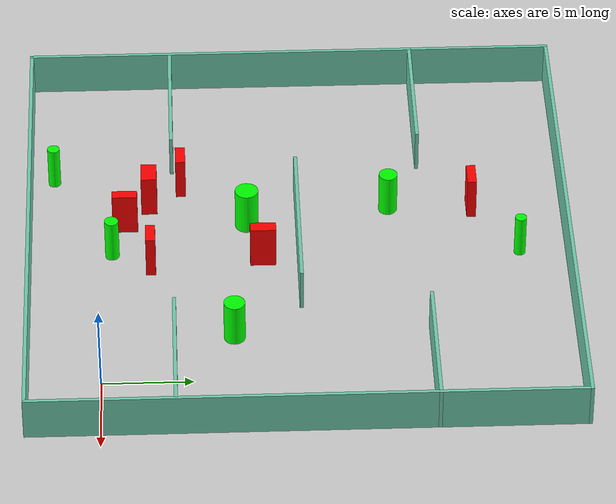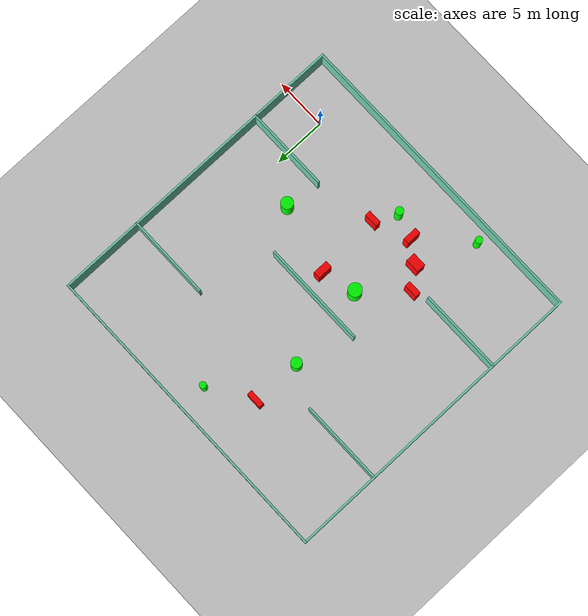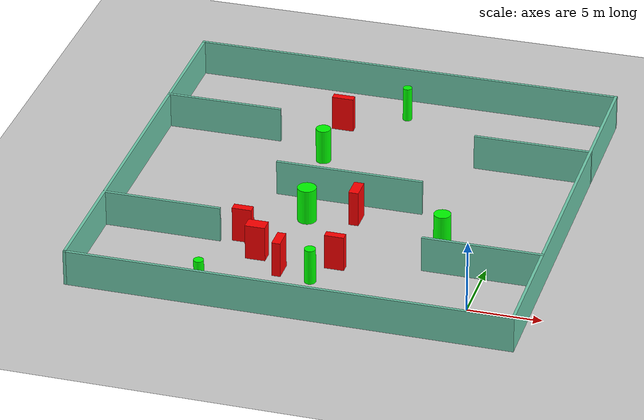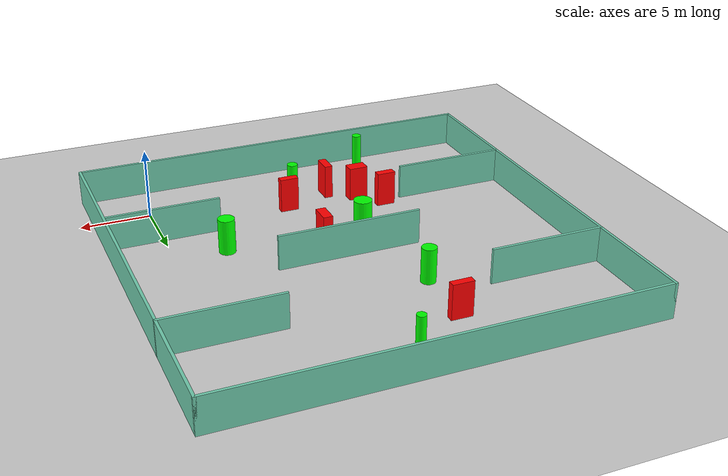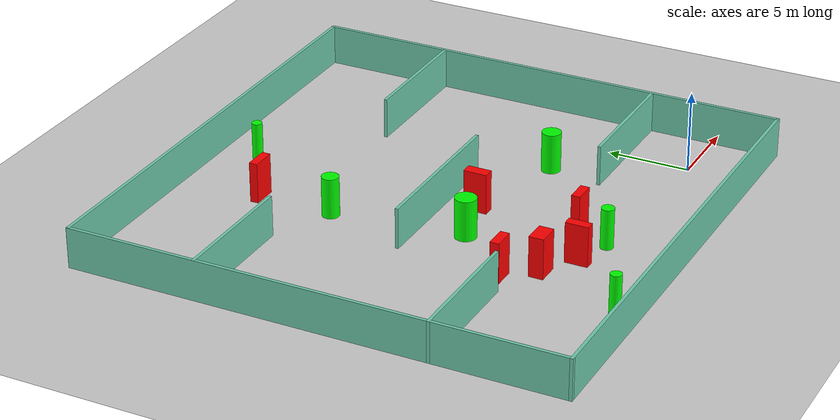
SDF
<sdf version="1.7">
 <world name="default">
  <light name="sun" type="directional">
   <pose>0 0 10 0 -0 0</pose>
   <diffuse>0.8 0.8 0.8 1</diffuse>
   <specular>0.2 0.2 0.2 1</specular>
   <attenuation>
    <range>1000</range>
    <constant>0.9</constant>
    <linear>0.01</linear>
    <quadratic>0.001</quadratic>
   </attenuation>
   <direction>-0.5 0.1 -0.9</direction>
   <spot><inner_angle>0</inner_angle><outer_angle>0</outer_angle><falloff>0</falloff></spot>
  </light>
  <model name="ground_plane">
   <static>1</static>
   <link name="link">
    <collision name="collision">
     <geometry><plane><normal>0 0 1</normal><size>100 100</size></plane></geometry>
     <surface>
      <contact><collide_bitmask>65535</collide_bitmask></contact>
      <friction><ode><mu>100</mu><mu2>50</mu2></ode></friction>
     </surface>
    </collision>
    <visual name="visual">
     <cast_shadows>0</cast_shadows>
     <geometry><plane><normal>0 0 1</normal><size>100 100</size></plane></geometry>
     <material>
      <script><uri>file://media/materials/scripts/gazebo.material</uri><name>Gazebo/Grey</name></script>
     </material>
    </visual>
   </link>
  </model>
  <gravity>0 0 -9.8</gravity>
  <magnetic_field>6e-06 2.3e-05 -4.2e-05</magnetic_field>
  <atmosphere type="adiabatic"/>
  <physics type="ode">
   <max_step_size>0.001</max_step_size>
   <real_time_factor>1</real_time_factor>
   <real_time_update_rate>1000</real_time_update_rate>
  </physics>
  <scene><ambient>0.4 0.4 0.4 1</ambient><background>0.7 0.7 0.7 1</background><shadows>1</shadows></scene>
  <spherical_coordinates>
   <surface_model>EARTH_WGS84</surface_model>
   <latitude_deg>0</latitude_deg>
   <longitude_deg>0</longitude_deg>
   <elevation>0</elevation>
   <heading_deg>0</heading_deg>
  </spherical_coordinates>
  <model name="my_base_walls">
   <link name="Wall_10">
    <collision name="Wall_10_Collision">
     <geometry><box><size>8.2 0.2 2.5</size></box></geometry>
     <pose>0 0 1.25 0 -0 0</pose>
    </collision>
    <visual name="Wall_10_Visual">
     <pose>0 0 1.25 0 -0 0</pose>
     <geometry><box><size>8.2 0.2 2.5</size></box></geometry>
     <material>
      <script><uri>file://media/materials/scripts/gazebo.material</uri><name>Gazebo/Grey</name></script>
      <ambient>0.435294 0.796078 0.67451 1</ambient>
     </material>
     <meta><layer>0</layer></meta>
    </visual>
    <pose>-11 -7 0 0 -0 0</pose>
   </link>
   <link name="Wall_12">
    <collision name="Wall_12_Collision">
     <geometry><box><size>8.2 0.2 2.5</size></box></geometry>
     <pose>0 0 1.25 0 -0 0</pose>
    </collision>
    <visual name="Wall_12_Visual">
     <pose>0 0 1.25 0 -0 0</pose>
     <geometry><box><size>8.2 0.2 2.5</size></box></geometry>
     <material>
      <script><uri>file://media/materials/scripts/gazebo.material</uri><name>Gazebo/Grey</name></script>
      <ambient>0.435294 0.796078 0.67451 1</ambient>
     </material>
     <meta><layer>0</layer></meta>
    </visual>
    <pose>-11 7 0 0 -0 0</pose>
   </link>
   <link name="Wall_14">
    <collision name="Wall_14_Collision">
     <geometry><box><size>8.2 0.2 2.5</size></box></geometry>
     <pose>0 0 1.25 0 -0 0</pose>
    </collision>
    <visual name="Wall_14_Visual">
     <pose>0 0 1.25 0 -0 0</pose>
     <geometry><box><size>8.2 0.2 2.5</size></box></geometry>
     <material>
      <script><uri>file://media/materials/scripts/gazebo.material</uri><name>Gazebo/Grey</name></script>
      <ambient>0.435294 0.796078 0.67451 1</ambient>
     </material>
     <meta><layer>0</layer></meta>
    </visual>
    <pose>11 7 0 0 -0 3.14159</pose>
   </link>
   <link name="Wall_16">
    <collision name="Wall_16_Collision">
     <geometry><box><size>10.2 0.2 2.5</size></box></geometry>
     <pose>0 0 1.25 0 -0 0</pose>
    </collision>
    <visual name="Wall_16_Visual">
     <pose>0 0 1.25 0 -0 0</pose>
     <geometry><box><size>10.2 0.2 2.5</size></box></geometry>
     <material>
      <script><uri>file://media/materials/scripts/gazebo.material</uri><name>Gazebo/Grey</name></script>
      <ambient>0.435294 0.796078 0.67451 1</ambient>
     </material>
     <meta><layer>0</layer></meta>
    </visual>
    <pose>0 0 0 0 -0 3.14159</pose>
   </link>
   <link name="Wall_2">
    <collision name="Wall_2_Collision">
     <geometry><box><size>30.2 0.2 2.5</size></box></geometry>
     <pose>0 0 1.25 0 -0 0</pose>
    </collision>
    <visual name="Wall_2_Visual">
     <pose>0 0 1.25 0 -0 0</pose>
     <geometry><box><size>30.2 0.2 2.5</size></box></geometry>
     <material>
      <script><uri>file://media/materials/scripts/gazebo.material</uri><name>Gazebo/Grey</name></script>
      <ambient>0.435294 0.796078 0.67451 1</ambient>
     </material>
     <meta><layer>0</layer></meta>
    </visual>
    <pose>0 -15 0 0 -0 3.14159</pose>
   </link>
   <link name="Wall_3">
    <collision name="Wall_3_Collision">
     <geometry><box><size>30.2 0.2 2.5</size></box></geometry>
     <pose>0 0 1.25 0 -0 0</pose>
    </collision>
    <visual name="Wall_3_Visual">
     <pose>0 0 1.25 0 -0 0</pose>
     <geometry><box><size>30.2 0.2 2.5</size></box></geometry>
     <material>
      <script><uri>file://media/materials/scripts/gazebo.material</uri><name>Gazebo/Grey</name></script>
      <ambient>0.435294 0.796078 0.67451 1</ambient>
     </material>
     <meta><layer>0</layer></meta>
    </visual>
    <pose>-15 0 0 0 -0 1.5708</pose>
   </link>
   <link name="Wall_4">
    <collision name="Wall_4_Collision">
     <geometry><box><size>30.2 0.2 2.5</size></box></geometry>
     <pose>0 0 1.25 0 -0 0</pose>
    </collision>
    <visual name="Wall_4_Visual">
     <pose>0 0 1.25 0 -0 0</pose>
     <geometry><box><size>30.2 0.2 2.5</size></box></geometry>
     <material>
      <script><uri>file://media/materials/scripts/gazebo.material</uri><name>Gazebo/Grey</name></script>
      <ambient>0.435294 0.796078 0.67451 1</ambient>
     </material>
     <meta><layer>0</layer></meta>
    </visual>
    <pose>0 15 0 0 -0 0</pose>
   </link>
   <link name="Wall_6">
    <collision name="Wall_6_Collision">
     <geometry><box><size>30.2 0.2 2.5</size></box></geometry>
     <pose>0 0 1.25 0 -0 0</pose>
    </collision>
    <visual name="Wall_6_Visual">
     <pose>0 0 1.25 0 -0 0</pose>
     <geometry><box><size>30.2 0.2 2.5</size></box></geometry>
     <material>
      <script><uri>file://media/materials/scripts/gazebo.material</uri><name>Gazebo/Grey</name></script>
      <ambient>0.435294 0.796078 0.67451 1</ambient>
     </material>
     <meta><layer>0</layer></meta>
    </visual>
    <pose>15 0 0 0 -0 1.5708</pose>
   </link>
   <link name="Wall_8">
    <collision name="Wall_8_Collision">
     <geometry><box><size>8.2 0.2 2.5</size></box></geometry>
     <pose>0 0 1.25 0 -0 0</pose>
    </collision>
    <visual name="Wall_8_Visual">
     <pose>0 0 1.25 0 -0 0</pose>
     <geometry><box><size>8.2 0.2 2.5</size></box></geometry>
     <material>
      <script><uri>file://media/materials/scripts/gazebo.material</uri><name>Gazebo/Grey</name></script>
      <ambient>0.435294 0.796078 0.67451 1</ambient>
     </material>
     <meta><layer>0</layer></meta>
    </visual>
    <pose>11 -7 0 0 -0 3.14159</pose>
   </link>
   <static>1</static>
   <pose>-11 11 0 0 -0 0</pose>
  </model>
  <model name="cylinder1">
   <static>1</static>
   <link name="link">
    <inertial>
     <mass>1</mass>
     <inertia><ixx>0.5</ixx><ixy>0</ixy><ixz>0</ixz><iyy>0.5</iyy><iyz>0</iyz><izz>1</izz></inertia>
    </inertial>
    <collision name="collision">
     <geometry><cylinder><radius>0.5844972894425321</radius><length>2.5</length></cylinder></geometry>
    </collision>
    <visual name="visual">
     <geometry><cylinder><radius>0.5844972894425321</radius><length>2.5</length></cylinder></geometry>
     <material>
      <ambient>0 1 0 1</ambient>
      <diffuse>0 1 0 1</diffuse>
      <specular>0.1 0.1 0.1 1</specular>
      <emissive>0 0 0 0</emissive>
     </material>
    </visual>
   </link>
   <pose>-3.5557188867851934 7.266997186048444 1.25 0 0 0</pose>
  </model>
  <model name="cylinder2">
   <static>1</static>
   <link name="link">
    <inertial>
     <mass>1</mass>
     <inertia><ixx>0.5</ixx><ixy>0</ixy><ixz>0</ixz><iyy>0.5</iyy><iyz>0</iyz><izz>1</izz></inertia>
    </inertial>
    <collision name="collision">
     <geometry><cylinder><radius>0.3892682920611508</radius><length>2.5</length></cylinder></geometry>
    </collision>
    <visual name="visual">
     <geometry><cylinder><radius>0.3892682920611508</radius><length>2.5</length></cylinder></geometry>
     <material>
      <ambient>0 1 0 1</ambient>
      <diffuse>0 1 0 1</diffuse>
      <specular>0.1 0.1 0.1 1</specular>
      <emissive>0 0 0 0</emissive>
     </material>
    </visual>
   </link>
   <pose>-10.727621779987745 0.6122652139326004 1.25 0 0 0</pose>
  </model>
  <model name="cylinder3">
   <static>1</static>
   <link name="link">
    <inertial>
     <mass>1</mass>
     <inertia><ixx>0.5</ixx><ixy>0</ixy><ixz>0</ixz><iyy>0.5</iyy><iyz>0</iyz><izz>1</izz></inertia>
    </inertial>
    <collision name="collision">
     <geometry><cylinder><radius>0.5195556569612056</radius><length>2.5</length></cylinder></geometry>
    </collision>
    <visual name="visual">
     <geometry><cylinder><radius>0.5195556569612056</radius><length>2.5</length></cylinder></geometry>
     <material>
      <ambient>0 1 0 1</ambient>
      <diffuse>0 1 0 1</diffuse>
      <specular>0.1 0.1 0.1 1</specular>
      <emissive>0 0 0 0</emissive>
     </material>
    </visual>
   </link>
   <pose>-14.313179382479326 16.168249006499522 1.25 0 0 0</pose>
  </model>
  <model name="cylinder4">
   <static>1</static>
   <link name="link">
    <inertial>
     <mass>1</mass>
     <inertia><ixx>0.5</ixx><ixy>0</ixy><ixz>0</ixz><iyy>0.5</iyy><iyz>0</iyz><izz>1</izz></inertia>
    </inertial>
    <collision name="collision">
     <geometry><cylinder><radius>0.3188008344983498</radius><length>2.5</length></cylinder></geometry>
    </collision>
    <visual name="visual">
     <geometry><cylinder><radius>0.3188008344983498</radius><length>2.5</length></cylinder></geometry>
     <material>
      <ambient>0 1 0 1</ambient>
      <diffuse>0 1 0 1</diffuse>
      <specular>0.1 0.1 0.1 1</specular>
      <emissive>0 0 0 0</emissive>
     </material>
    </visual>
   </link>
   <pose>-10.264150042951202 23.336684500326555 1.25 0 0 0</pose>
  </model>
  <model name="cylinder5">
   <static>1</static>
   <link name="link">
    <inertial>
     <mass>1</mass>
     <inertia><ixx>0.5</ixx><ixy>0</ixy><ixz>0</ixz><iyy>0.5</iyy><iyz>0</iyz><izz>1</izz></inertia>
    </inertial>
    <collision name="collision">
     <geometry><cylinder><radius>0.34251044711378914</radius><length>2.5</length></cylinder></geometry>
    </collision>
    <visual name="visual">
     <geometry><cylinder><radius>0.34251044711378914</radius><length>2.5</length></cylinder></geometry>
     <material>
      <ambient>0 1 0 1</ambient>
      <diffuse>0 1 0 1</diffuse>
      <specular>0.1 0.1 0.1 1</specular>
      <emissive>0 0 0 0</emissive>
     </material>
    </visual>
   </link>
   <pose>-17.28289407536997 -2.661804554710668 1.25 0 0 0</pose>
  </model>
  <model name="cylinder6">
   <static>1</static>
   <link name="link">
    <inertial>
     <mass>1</mass>
     <inertia><ixx>0.5</ixx><ixy>0</ixy><ixz>0</ixz><iyy>0.5</iyy><iyz>0</iyz><izz>1</izz></inertia>
    </inertial>
    <collision name="collision">
     <geometry><cylinder><radius>0.6529252792779326</radius><length>2.5</length></cylinder></geometry>
    </collision>
    <visual name="visual">
     <geometry><cylinder><radius>0.6529252792779326</radius><length>2.5</length></cylinder></geometry>
     <material>
      <ambient>0 1 0 1</ambient>
      <diffuse>0 1 0 1</diffuse>
      <specular>0.1 0.1 0.1 1</specular>
      <emissive>0 0 0 0</emissive>
     </material>
    </visual>
   </link>
   <pose>-13.146990214933943 8.174480538244786 1.25 0 0 0</pose>
  </model>
  <model name="box1">
   <static>1</static>
   <link name="link">
    <inertial>
     <mass>1</mass>
     <inertia><ixx>0.083</ixx><ixy>0</ixy><ixz>0</ixz><iyy>0.083</iyy><iyz>0</iyz><izz>0.083</izz></inertia>
    </inertial>
    <collision name="collision">
     <geometry><box><size>0.6789368367247359 1.437962304326711 2.5</size></box></geometry>
    </collision>
    <visual name="visual">
     <geometry><box><size>0.6789368367247359 1.437962304326711 2.5</size></box></geometry>
     <material>
      <ambient>1 0 0 1</ambient>
      <diffuse>1 0 0 1</diffuse>
      <specular>0.1 0.1 0.1 1</specular>
      <emissive>0 0 0 0</emissive>
     </material>
    </visual>
    <sensor name="my_contact" type="contact">
     <contact><collision>box_collision</collision><topic>__default_topic__</topic></contact>
    </sensor>
   </link>
   <pose>-9.951836923523924 9.00353290491626 1.25 0 0 0</pose>
  </model>
  <model name="box2">
   <static>1</static>
   <link name="link">
    <inertial>
     <mass>1</mass>
     <inertia><ixx>0.083</ixx><ixy>0</ixy><ixz>0</ixz><iyy>0.083</iyy><iyz>0</iyz><izz>0.083</izz></inertia>
    </inertial>
    <collision name="collision">
     <geometry><box><size>1.329154512906839 0.5337887876046158 2.5</size></box></geometry>
    </collision>
    <visual name="visual">
     <geometry><box><size>1.329154512906839 0.5337887876046158 2.5</size></box></geometry>
     <material>
      <ambient>1 0 0 1</ambient>
      <diffuse>1 0 0 1</diffuse>
      <specular>0.1 0.1 0.1 1</specular>
      <emissive>0 0 0 0</emissive>
     </material>
    </visual>
    <sensor name="my_contact" type="contact">
     <contact><collision>box_collision</collision><topic>__default_topic__</topic></contact>
    </sensor>
   </link>
   <pose>-9.636656177978383 2.756342366542321 1.25 0 0 0</pose>
  </model>
  <model name="box3">
   <static>1</static>
   <link name="link">
    <inertial>
     <mass>1</mass>
     <inertia><ixx>0.083</ixx><ixy>0</ixy><ixz>0</ixz><iyy>0.083</iyy><iyz>0</iyz><izz>0.083</izz></inertia>
    </inertial>
    <collision name="collision">
     <geometry><box><size>1.3458181879476694 0.5584793725186745 2.5</size></box></geometry>
    </collision>
    <visual name="visual">
     <geometry><box><size>1.3458181879476694 0.5584793725186745 2.5</size></box></geometry>
     <material>
      <ambient>1 0 0 1</ambient>
      <diffuse>1 0 0 1</diffuse>
      <specular>0.1 0.1 0.1 1</specular>
      <emissive>0 0 0 0</emissive>
     </material>
    </visual>
    <sensor name="my_contact" type="contact">
     <contact><collision>box_collision</collision><topic>__default_topic__</topic></contact>
    </sensor>
   </link>
   <pose>-16.493076604572465 4.4997344712474545 1.25 0 0 0</pose>
  </model>
  <model name="box4">
   <static>1</static>
   <link name="link">
    <inertial>
     <mass>1</mass>
     <inertia><ixx>0.083</ixx><ixy>0</ixy><ixz>0</ixz><iyy>0.083</iyy><iyz>0</iyz><izz>0.083</izz></inertia>
    </inertial>
    <collision name="collision">
     <geometry><box><size>1.3686794535220628 0.8868279854977962 2.5</size></box></geometry>
    </collision>
    <visual name="visual">
     <geometry><box><size>1.3686794535220628 0.8868279854977962 2.5</size></box></geometry>
     <material>
      <ambient>1 0 0 1</ambient>
      <diffuse>1 0 0 1</diffuse>
      <specular>0.1 0.1 0.1 1</specular>
      <emissive>0 0 0 0</emissive>
     </material>
    </visual>
    <sensor name="my_contact" type="contact">
     <contact><collision>box_collision</collision><topic>__default_topic__</topic></contact>
    </sensor>
   </link>
   <pose>-14.993296672876891 2.707415257846357 1.25 0 0 0</pose>
  </model>
  <model name="box5">
   <static>1</static>
   <link name="link">
    <inertial>
     <mass>1</mass>
     <inertia><ixx>0.083</ixx><ixy>0</ixy><ixz>0</ixz><iyy>0.083</iyy><iyz>0</iyz><izz>0.083</izz></inertia>
    </inertial>
    <collision name="collision">
     <geometry><box><size>1.5129271974986565 0.5100928520659392 2.5</size></box></geometry>
    </collision>
    <visual name="visual">
     <geometry><box><size>1.5129271974986565 0.5100928520659392 2.5</size></box></geometry>
     <material>
      <ambient>1 0 0 1</ambient>
      <diffuse>1 0 0 1</diffuse>
      <specular>0.1 0.1 0.1 1</specular>
      <emissive>0 0 0 0</emissive>
     </material>
    </visual>
    <sensor name="my_contact" type="contact">
     <contact><collision>box_collision</collision><topic>__default_topic__</topic></contact>
    </sensor>
   </link>
   <pose>-14.199049773046918 20.848751806966515 1.25 0 0 0</pose>
  </model>
  <model name="box6">
   <static>1</static>
   <link name="link">
    <inertial>
     <mass>1</mass>
     <inertia><ixx>0.083</ixx><ixy>0</ixy><ixz>0</ixz><iyy>0.083</iyy><iyz>0</iyz><izz>0.083</izz></inertia>
    </inertial>
    <collision name="collision">
     <geometry><box><size>0.577540535526647 1.4086673132302543 2.5</size></box></geometry>
    </collision>
    <visual name="visual">
     <geometry><box><size>0.577540535526647 1.4086673132302543 2.5</size></box></geometry>
     <material>
      <ambient>1 0 0 1</ambient>
      <diffuse>1 0 0 1</diffuse>
      <specular>0.1 0.1 0.1 1</specular>
      <emissive>0 0 0 0</emissive>
     </material>
    </visual>
    <sensor name="my_contact" type="contact">
     <contact><collision>box_collision</collision><topic>__default_topic__</topic></contact>
    </sensor>
   </link>
   <pose>-13.056279827293752 1.3432751722681502 1.25 0 0 0</pose>
  </model>
 </world>
</sdf>
